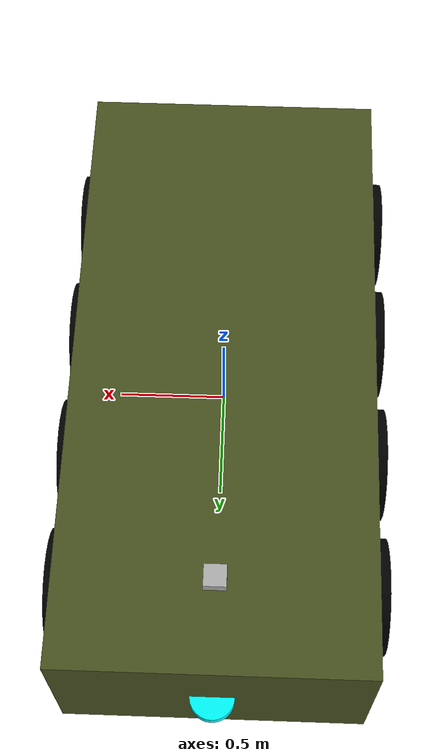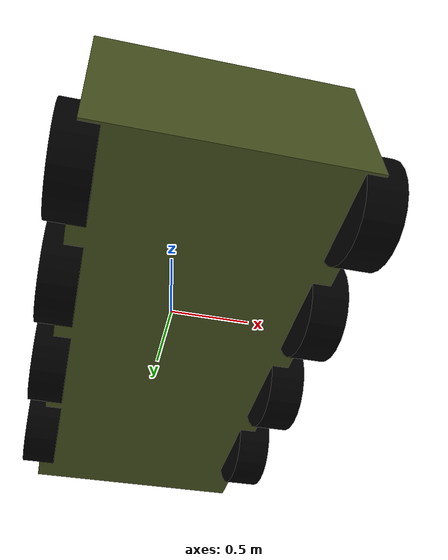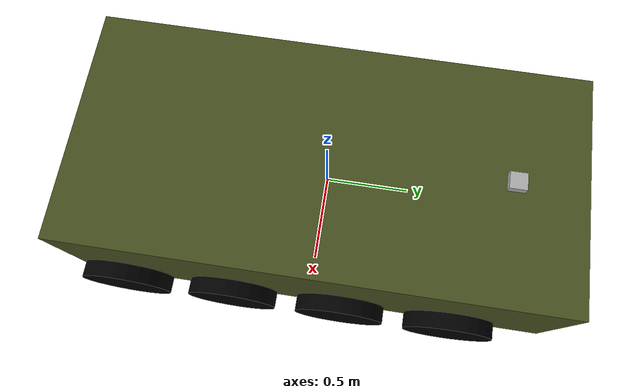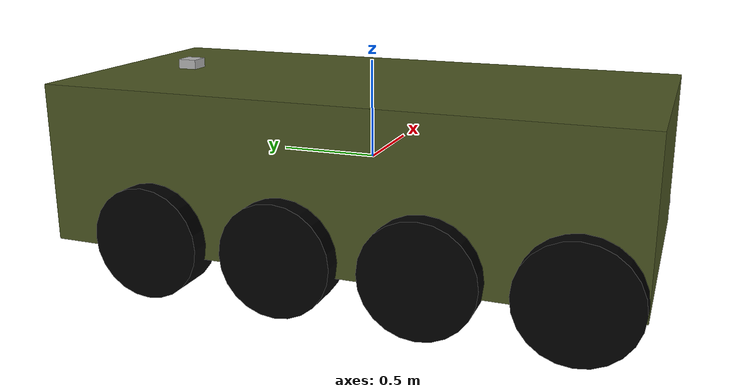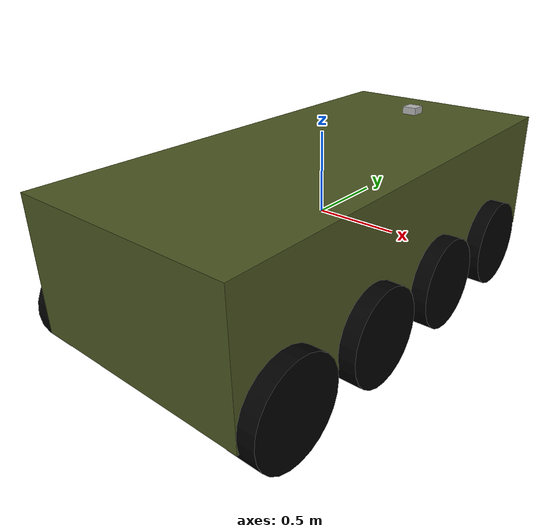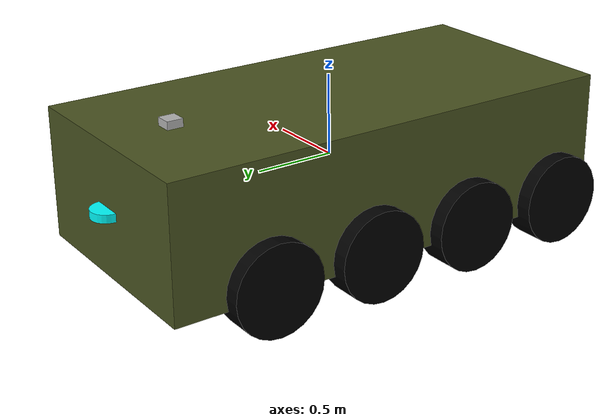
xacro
<?xml version="1.0"?>
<robot name="argo_j8" xmlns:xacro="http://www.ros.org/wiki/xacro">

<xacro:include filename="inertial_macros.xacro"/>

  <!-- Definicion de materiales constantes -->
  <material name="Military green">
    <color rgba="0.29 0.33 0.13 1.0"/>
  </material>

  <material name="black">
    <color rgba="0.0 0.0 0.0 1.0"/>
  </material>

  <material name="blue">
    <color rgba="0.0 1.0 1.0 1.0"/>
  </material>

  <material name="grey">
    <color rgba="0.7 0.7 0.7 1.0"/>
  </material>

  <!-- Chasis -->
  <link name="base_link">
    <visual>
      <geometry>
        <box size="1.40 2.94 0.81"/> <!-- Dimensiones en metros -->
      </geometry>
      <origin xyz="0 0 0" rpy="0 0 0" />
      <material name="Military green"/>
    </visual>
    <collision>
      <geometry>
        <box size="1.40 2.94 0.81"/> <!-- Dimensiones en metros -->
      </geometry>
      <origin xyz="0 0 0" rpy="0 0 0" />
    </collision>
    <xacro:inertial_box mass="750" x="1.40" y="2.94" z="0.81">
     <origin xyz="0 0 0" rpy="0 0 0" />
    </xacro:inertial_box>
  </link>

  <!-- LiDAR, Cámara y sensor -->
   <link name="LiDAR">
    <visual>
      <geometry>
        <cylinder radius="0.1" length="0.05"/> <!-- Dimensiones en metros -->
      </geometry>
      <origin xyz="0 0 0" rpy="0 0 0" />
      <material name="blue"/>
    </visual>
    <collision>
      <geometry>
        <box size="0.2 0.2 0.05"/> <!-- Dimensiones en metros -->
      </geometry>
      <origin xyz="0 0 0" rpy="0 0 0" />
    </collision>
  </link>

   <link name="camera">
    <visual>
      <geometry>
        <box size="0.1 0.1 0.1"/> <!-- Dimensiones en metros -->
      </geometry>
      <origin xyz="0 0 0" rpy="0 0 0" />
      <material name="grey"/>
    </visual>
    <collision>
      <geometry>
        <box size="0.1 0.1 0.1"/> <!-- Dimensiones en metros -->
      </geometry>
      <origin xyz="0 0 0" rpy="0 0 0" />
    </collision>
  </link>

  <!-- Definicion de las 8 ruedas -->

  <!-- Rueda delantera izquierda -->
  <link name="wheel_front_left">
    <visual>
      <geometry>
        <cylinder radius="0.28" length="0.20"/> <!-- Radio y ancho de la rueda -->
      </geometry>
      <origin xyz="0 0 0" rpy="0 1.57 0" /> <!-- Radio en radianes -->
      <material name="black"/>
    </visual>
    <collision>
      <geometry>
        <cylinder radius="0.28" length="0.20"/> <!-- Radio y ancho de la rueda -->
      </geometry>
      <origin xyz="0 0 0" rpy="0 1.57 0" /> <!-- Radio en radianes -->
    </collision>
    <xacro:inertial_cylinder mass="11" radius="0.28" length="0.20">
      <origin xyz="0 0 0" rpy="0 1.57 0" /> <!-- Radio en radianes -->
    </xacro:inertial_cylinder>
  </link>

  <!-- Rueda delantera derecha -->
  <link name="wheel_front_right">
    <visual>
      <geometry>
        <cylinder radius="0.28" length="0.20"/> <!-- Radio y ancho de la rueda -->
      </geometry>
      <origin xyz="0 0 0" rpy="0 1.57 0" />
      <material name="black"/>
    </visual>
    <collision>
      <geometry>
        <cylinder radius="0.28" length="0.20"/> <!-- Radio y ancho de la rueda -->
      </geometry>
      <origin xyz="0 0 0" rpy="0 1.57 0" />
    </collision>
    <xacro:inertial_cylinder mass="11" radius="0.28" length="0.20">
      <origin xyz="0 0 0" rpy="0 1.57 0" /> <!-- Radio en radianes -->
    </xacro:inertial_cylinder>
  </link>

  <!-- Rueda delantera_media izquierda -->
  <link name="wheel_midfront_left">
    <visual>
      <geometry>
        <cylinder radius="0.28" length="0.20"/> <!-- Radio y ancho de la rueda -->
      </geometry>
      <origin xyz="0 0 0" rpy="0 1.57 0" />
      <material name="black"/>
    </visual>
    <collision>
      <geometry>
        <cylinder radius="0.28" length="0.20"/> <!-- Radio y ancho de la rueda -->
      </geometry>
      <origin xyz="0 0 0" rpy="0 1.57 0" />
    </collision>
    <xacro:inertial_cylinder mass="11" radius="0.28" length="0.20">
      <origin xyz="0 0 0" rpy="0 1.57 0" /> <!-- Radio en radianes -->
    </xacro:inertial_cylinder>
  </link>

    <!-- Rueda delantera_media derecha -->
  <link name="wheel_midfront_right">
    <visual>
      <geometry>
        <cylinder radius="0.28" length="0.20"/> <!-- Radio y ancho de la rueda -->
      </geometry>
      <origin xyz="0 0 0" rpy="0 1.57 0" />
      <material name="black"/>
    </visual>
    <collision>
      <geometry>
        <cylinder radius="0.28" length="0.20"/> <!-- Radio y ancho de la rueda -->
      </geometry>
      <origin xyz="0 0 0" rpy="0 1.57 0" />
    </collision>
    <xacro:inertial_cylinder mass="11" radius="0.28" length="0.20">
      <origin xyz="0 0 0" rpy="0 1.57 0" /> <!-- Radio en radianes -->
    </xacro:inertial_cylinder>
  </link>

    <!-- Rueda trasera_media izquierda -->
  <link name="wheel_midback_left">
    <visual>
      <geometry>
        <cylinder radius="0.28" length="0.20"/> <!-- Radio y ancho de la rueda -->
      </geometry>
      <origin xyz="0 0 0" rpy="0 1.57 0" />
      <material name="black"/>
    </visual>
    <collision>
      <geometry>
        <cylinder radius="0.28" length="0.20"/> <!-- Radio y ancho de la rueda -->
      </geometry>
      <origin xyz="0 0 0" rpy="0 1.57 0" />
    </collision>
    <xacro:inertial_cylinder mass="11" radius="0.28" length="0.20">
      <origin xyz="0 0 0" rpy="0 1.57 0" /> <!-- Radio en radianes -->
    </xacro:inertial_cylinder>
  </link>

  <!-- Rueda trasera_media derecha -->
  <link name="wheel_midback_right">
    <visual>
      <geometry>
        <cylinder radius="0.28" length="0.20"/> <!-- Radio y ancho de la rueda -->
      </geometry>
      <origin xyz="0 0 0" rpy="0 1.57 0" />
      <material name="black"/>
    </visual>
    <collision>
      <geometry>
        <cylinder radius="0.28" length="0.20"/> <!-- Radio y ancho de la rueda -->
      </geometry>
      <origin xyz="0 0 0" rpy="0 1.57 0" />
    </collision>
    <xacro:inertial_cylinder mass="11" radius="0.28" length="0.20">
      <origin xyz="0 0 0" rpy="0 1.57 0" /> <!-- Radio en radianes -->
    </xacro:inertial_cylinder>
  </link>

    <!-- Rueda trasera izquierda -->
  <link name="wheel_back_left">
    <visual>
      <geometry>
        <cylinder radius="0.28" length="0.20"/> <!-- Radio y ancho de la rueda -->
      </geometry>
      <origin xyz="0 0 0" rpy="0 1.57 0" />
      <material name="black"/>
    </visual>
    <collision>
      <geometry>
        <cylinder radius="0.28" length="0.20"/> <!-- Radio y ancho de la rueda -->
      </geometry>
      <origin xyz="0 0 0" rpy="0 1.57 0" />
    </collision>
    <xacro:inertial_cylinder mass="11" radius="0.28" length="0.20">
      <origin xyz="0 0 0" rpy="0 1.57 0" /> <!-- Radio en radianes -->
    </xacro:inertial_cylinder>
  </link>

  <!-- Rueda trasera derecha -->
  <link name="wheel_back_right">
    <visual>
      <geometry>
        <cylinder radius="0.28" length="0.20"/> <!-- Radio y ancho de la rueda -->
      </geometry>
      <origin xyz="0 0 0" rpy="0 1.57 0" />
      <material name="black"/>
    </visual>
    <collision>
      <geometry>
        <cylinder radius="0.28" length="0.20"/> <!-- Radio y ancho de la rueda -->
      </geometry>
      <origin xyz="0 0 0" rpy="0 1.57 0" />
    </collision>
    <xacro:inertial_cylinder mass="11" radius="0.28" length="0.20">
      <origin xyz="0 0 0" rpy="0 1.57 0" /> <!-- Radio en radianes -->
    </xacro:inertial_cylinder>
  </link>

  <!-- Link virtual para base del plano.  -->
  <link name="base_footprint"/>

  <!-- Joint de referencia de la base del plano y Argo J8 -->
  <joint name="joint_base_footprint" type="fixed">
    <parent link="base_link"/>
    <child link="base_footprint"/>
    <origin xyz="0 0 -0.605" rpy="0 0 0"/> <!-- Posición de la rueda con respecto al chasis -->
  </joint>

  <!-- Definicion de Joints entre chasis y LiDAR, cámara y sensores, y, entre chasis y rueda -->

  <!-- Joint entre chasis y LiDAR -->
  <joint name="joint_LiDAR" type="fixed">
    <parent link="base_link"/>
    <child link="LiDAR"/>
    <origin xyz="0 1.47 0" rpy="0 0 0"/> <!-- Posición de la rueda con respecto al chasis -->
  </joint>

  <!-- Joint entre chasis y camera -->
  <joint name="joint_camera" type="fixed">
    <parent link="base_link"/>
    <child link="camera"/>
    <origin xyz="0 1.06 0.405" rpy="0 0 0"/> <!-- Posición de la rueda con respecto al chasis -->
  </joint>

  <!-- Joint entre chasis y rueda delantera izquierda -->
  <joint name="joint_wheel_front_left" type="continuous">
    <parent link="base_link"/>
    <child link="wheel_front_left"/>
    <origin xyz="-0.7 0.88 -0.325" rpy="0 0 0"/> <!-- Posición de la rueda con respecto al chasis -->
    <axis xyz="-1 0 0"/> <!-- Eje de rotación -->
  </joint>

    <!-- Joint entre chasis y rueda delantera derecha -->
  <joint name="joint_wheel_front_right" type="continuous">
    <parent link="base_link"/>
    <child link="wheel_front_right"/>
    <origin xyz="0.7 0.88 -0.325" rpy="0 0 0"/> <!-- Posición de la rueda con respecto al chasis -->
    <axis xyz="-1 0 0"/> <!-- Eje de rotación -->
  </joint>

    <!-- Joint entre chasis y rueda delantera_media izquierda -->
  <joint name="joint_wheel_midfront_left" type="continuous">
    <parent link="base_link"/>
    <child link="wheel_midfront_left"/>
    <origin xyz="-0.7 0.19 -0.325" rpy="0 0 0"/> <!-- Posición de la rueda con respecto al chasis -->
    <axis xyz="-1 0 0"/> <!-- Eje de rotación -->
  </joint>

    <!-- Joint entre chasis y rueda delantera_media derecha -->
  <joint name="joint_wheel_midfront_right" type="continuous">
    <parent link="base_link"/>
    <child link="wheel_midfront_right"/>
    <origin xyz="0.7 0.19 -0.325" rpy="0 0 0"/> <!-- Posición de la rueda con respecto al chasis -->
    <axis xyz="-1 0 0"/> <!-- Eje de rotación -->
  </joint>

  <!-- Joint entre chasis y rueda trasera_media izquierda -->
  <joint name="joint_wheel_midback_left" type="continuous">
    <parent link="base_link"/>
    <child link="wheel_midback_left"/>
    <origin xyz="-0.7 -0.5 -0.325" rpy="0 0 0"/> <!-- Posición de la rueda con respecto al chasis -->
    <axis xyz="-1 0 0"/> <!-- Eje de rotación -->
  </joint>

  <!-- Joint entre chasis y rueda trasera_media derecha -->
  <joint name="joint_wheel_midback_right" type="continuous">
    <parent link="base_link"/>
    <child link="wheel_midback_right"/>
    <origin xyz="0.7 -0.5 -0.325" rpy="0 0 0"/> <!-- Posición de la rueda con respecto al chasis -->
    <axis xyz="-1 0 0"/> <!-- Eje de rotación -->
  </joint>

  <!-- Joint entre chasis y rueda trasera izquierda -->
  <joint name="joint_wheel_back_left" type="continuous">
    <parent link="base_link"/>
    <child link="wheel_back_left"/>
    <origin xyz="-0.7 -1.19 -0.325" rpy="0 0 0"/> <!-- Posición de la rueda con respecto al chasis -->
    <axis xyz="-1 0 0"/> <!-- Eje de rotación -->
  </joint>

  <!-- Joint entre chasis y rueda trasera derecha -->
  <joint name="joint_wheel_back_right" type="continuous">
    <parent link="base_link"/>
    <child link="wheel_back_right"/>
    <origin xyz="0.7 -1.19 -0.325" rpy="0 0 0"/> <!-- Posición de la rueda con respecto al chasis -->
    <axis xyz="-1 0 0"/> <!-- Eje de rotación -->
  </joint>

</robot>
